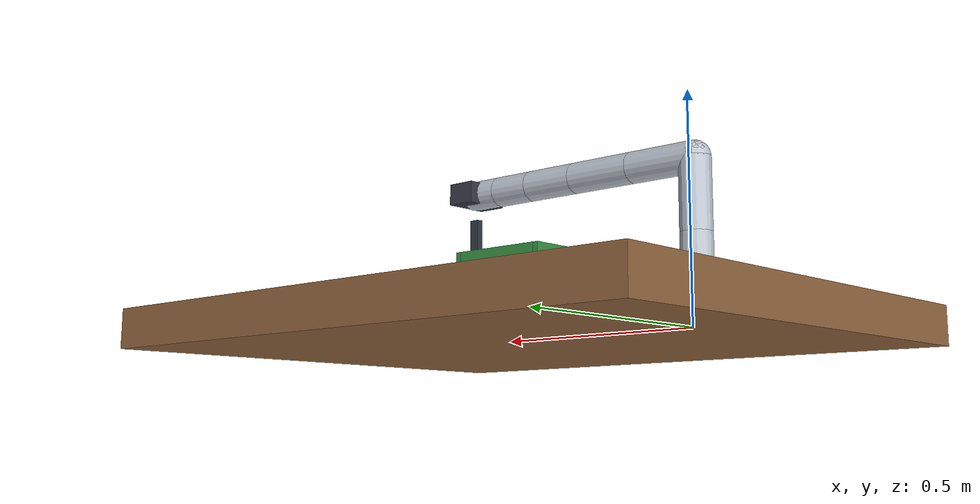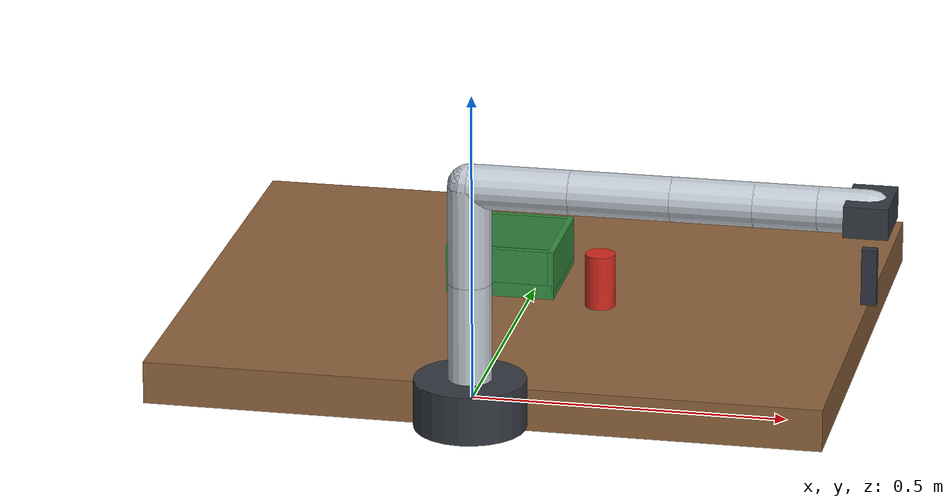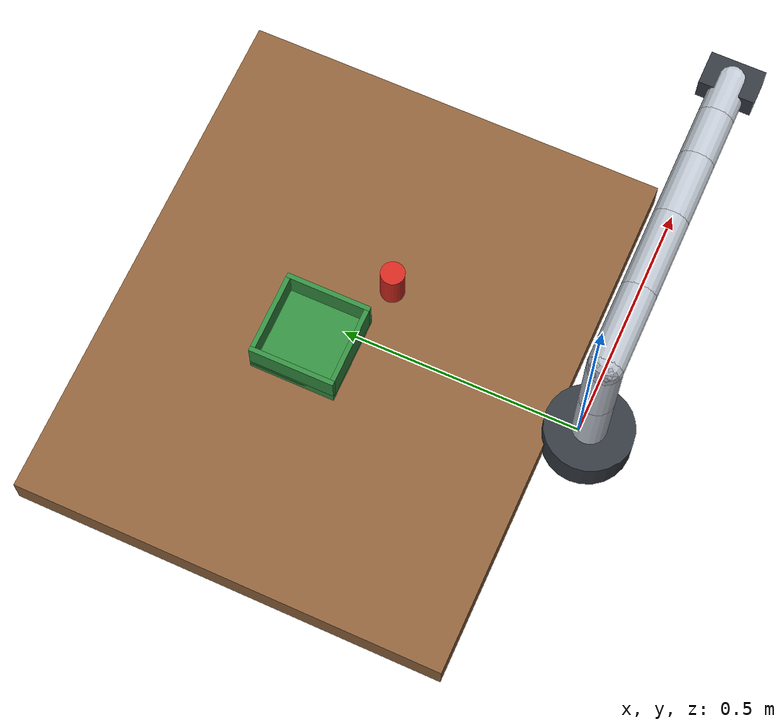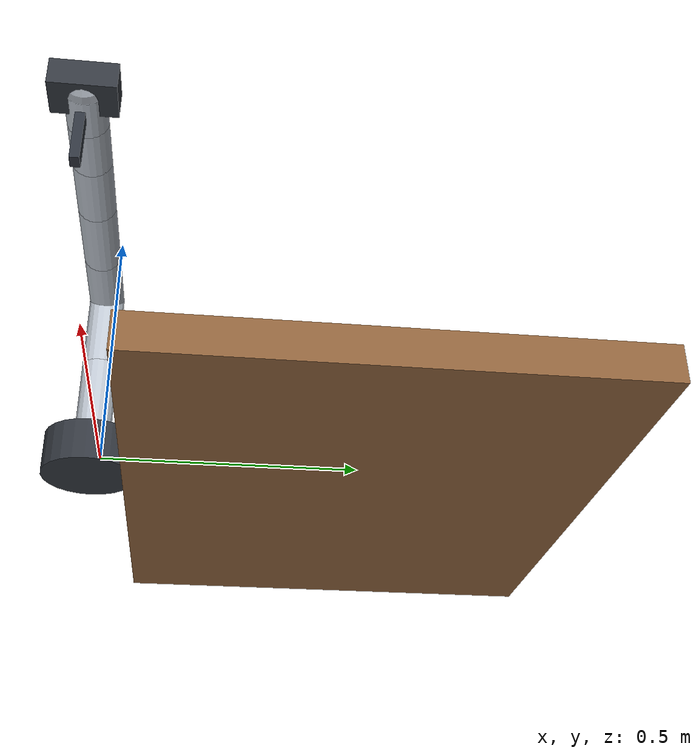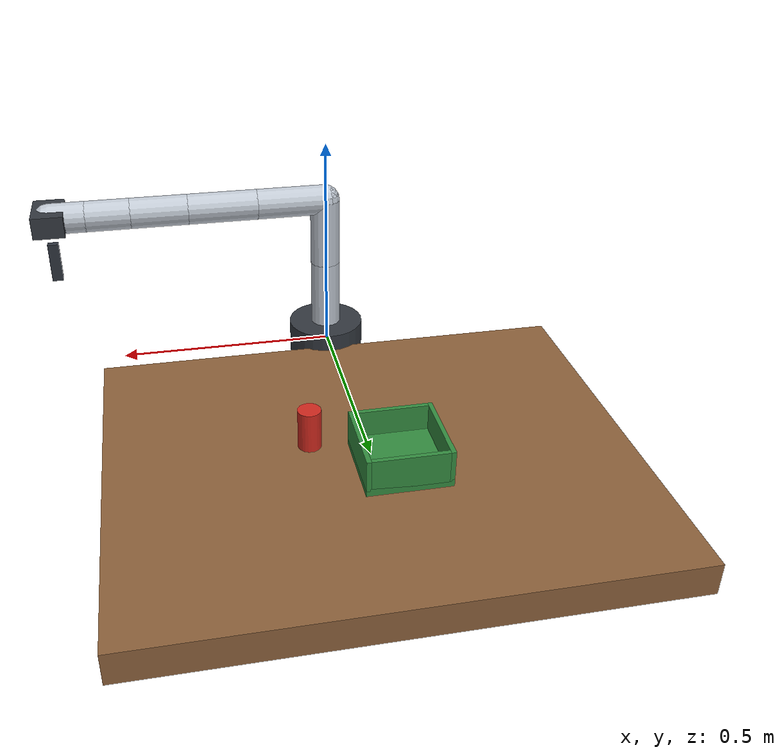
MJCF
<mujoco model="panda_like_pick_place">
  <!-- Original task-local primitive-geometry model; no third-party meshes/assets. -->
  <compiler angle="radian" autolimits="true"/>
  <option timestep="0.002" integrator="implicitfast" gravity="0 0 -9.81"/>
  <visual><global offwidth="640" offheight="480"/></visual>
  <default>
    <joint damping="2" armature="0.05"/>
    <geom friction="0.8 0.02 0.002" condim="4"/>
    <default class="arm">
      <joint type="hinge" limited="true" range="-2.8 2.8"/>
      <geom type="capsule" size="0.035" rgba="0.75 0.78 0.82 1" contype="0" conaffinity="0" density="700"/>
    </default>
    <default class="finger">
      <joint type="slide" limited="true" range="0 0.04" damping="5"/>
      <geom type="box" size="0.012 0.008 0.045" rgba="0.18 0.2 0.24 1" mass="0.08"/>
    </default>
  </default>
  <worldbody>
    <light pos="0 -0.2 1.5" dir="0 0.5 -1" diffuse="0.8 0.8 0.8"/>
    <light pos="-0.8 1.0 1.0" dir="0.6 -0.4 -0.8" diffuse="0.45 0.45 0.45"/>
    <camera name="overview" pos="0.9 -0.45 0.85" xyaxes="0.75 0.66 0 -0.35 0.40 0.85"/>
    <body name="table" pos="0 0.5 -0.035">
      <geom name="table_geom" type="box" size="0.55 0.45 0.035" rgba="0.55 0.38 0.23 1"/>
    </body>
    <body name="box" pos="-0.05 0.55 0.012">
      <geom name="box_floor_geom" type="box" size="0.09 0.09 0.012" rgba="0.2 0.55 0.25 1"/>
      <geom name="box_wall_pos_x" type="box" pos="0.085 0 0.035" size="0.005 0.09 0.035" rgba="0.2 0.55 0.25 1"/>
      <geom type="box" pos="-0.085 0 0.035" size="0.005 0.09 0.035" rgba="0.2 0.55 0.25 1"/>
      <geom name="box_wall_pos_y" type="box" pos="0 0.085 0.035" size="0.08 0.005 0.035" rgba="0.2 0.55 0.25 1"/>
      <geom type="box" pos="0 -0.085 0.035" size="0.08 0.005 0.035" rgba="0.2 0.55 0.25 1"/>
    </body>
    <body name="can" pos="0.12 0.45 0.045">
      <freejoint name="can_free"/>
      <geom name="can_geom" type="cylinder" size="0.025 0.045" mass="0.12" rgba="0.82 0.16 0.12 1"/>
    </body>
    <body name="panda_base" pos="0 -0.02 0">
      <geom type="cylinder" size="0.09 0.04" rgba="0.2 0.22 0.25 1" contype="0" conaffinity="0"/>
      <body name="panda_link1" pos="0 0 0.04" childclass="arm">
        <joint name="panda_joint1" axis="0 0 1"/>
        <geom fromto="0 0 0 0 0 0.16"/>
        <body name="panda_link2" pos="0 0 0.16">
          <joint name="panda_joint2" axis="0 1 0" range="-1.9 1.9"/>
          <geom fromto="0 0 0 0 0 0.16"/>
          <body name="panda_link3" pos="0 0 0.16">
            <joint name="panda_joint3" axis="0 0 1"/>
            <geom fromto="0 0 0 0.16 0 0"/>
            <body name="panda_link4" pos="0.16 0 0">
              <joint name="panda_joint4" axis="0 1 0" range="-2.9 0.1"/>
              <geom fromto="0 0 0 0.16 0 0"/>
              <body name="panda_link5" pos="0.16 0 0">
                <joint name="panda_joint5" axis="0 0 1"/>
                <geom fromto="0 0 0 0.13 0 0"/>
                <body name="panda_link6" pos="0.13 0 0">
                  <joint name="panda_joint6" axis="0 1 0" range="-0.1 3.7"/>
                  <geom fromto="0 0 0 0.10 0 0"/>
                  <body name="panda_link7" pos="0.10 0 0">
                    <joint name="panda_joint7" axis="0 0 1"/>
                    <geom fromto="0 0 0 0.08 0 0"/>
                    <body name="panda_hand" pos="0.08 0 0">
                      <geom name="hand_geom" type="box" size="0.035 0.055 0.025" rgba="0.2 0.22 0.25 1" contype="0" conaffinity="0" mass="0.3"/>
                      <site name="panda_tcp" pos="0 0 -0.075" size="0.008" rgba="1 0.8 0 1"/>
                      <body name="left_finger" pos="0 0 -0.065" childclass="finger">
                        <joint name="left_finger_joint" axis="0 1 0"/>
                        <geom name="left_finger_geom" pos="0 0 -0.04"/>
                      </body>
                      <body name="right_finger" pos="0 0 -0.065" childclass="finger">
                        <joint name="right_finger_joint" axis="0 -1 0"/>
                        <geom name="right_finger_geom" pos="0 0 -0.04"/>
                      </body>
                    </body>
                  </body>
                </body>
              </body>
            </body>
          </body>
        </body>
      </body>
    </body>
  </worldbody>
  <actuator>
    <position name="joint1_act" joint="panda_joint1" kp="120" ctrlrange="-2.8 2.8"/>
    <position name="joint2_act" joint="panda_joint2" kp="120" ctrlrange="-1.9 1.9"/>
    <position name="joint3_act" joint="panda_joint3" kp="100" ctrlrange="-2.8 2.8"/>
    <position name="joint4_act" joint="panda_joint4" kp="100" ctrlrange="-2.9 0.1"/>
    <position name="joint5_act" joint="panda_joint5" kp="80" ctrlrange="-2.8 2.8"/>
    <position name="joint6_act" joint="panda_joint6" kp="80" ctrlrange="-0.1 3.7"/>
    <position name="joint7_act" joint="panda_joint7" kp="60" ctrlrange="-2.8 2.8"/>
    <position name="left_finger_act" joint="left_finger_joint" kp="80" ctrlrange="0 0.04"/>
    <position name="right_finger_act" joint="right_finger_joint" kp="80" ctrlrange="0 0.04"/>
  </actuator>
  <keyframe>
    <key name="home" qpos="0.12 0.45 0.045 1 0 0 0 0 -0.6 0 -1.5 0 1.2 0 0.04 0.04" ctrl="0 -0.6 0 -1.5 0 1.2 0 0.04 0.04"/>
  </keyframe>
</mujoco>
